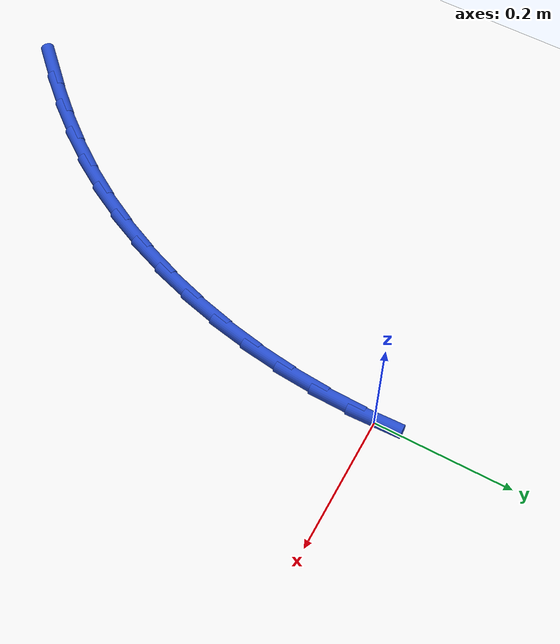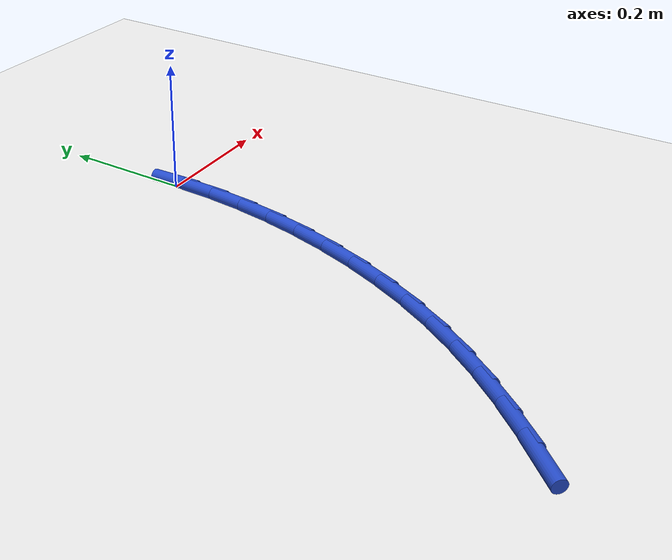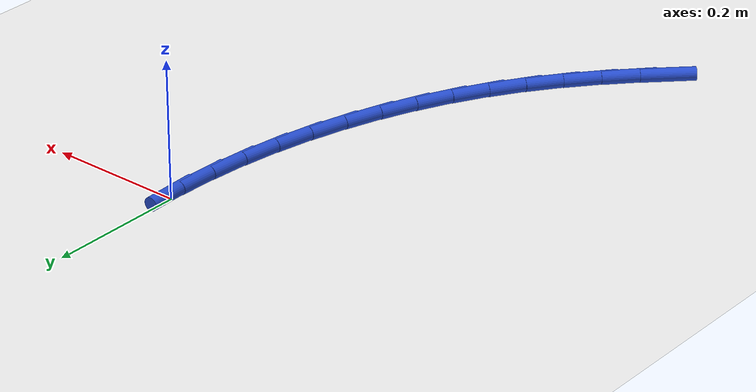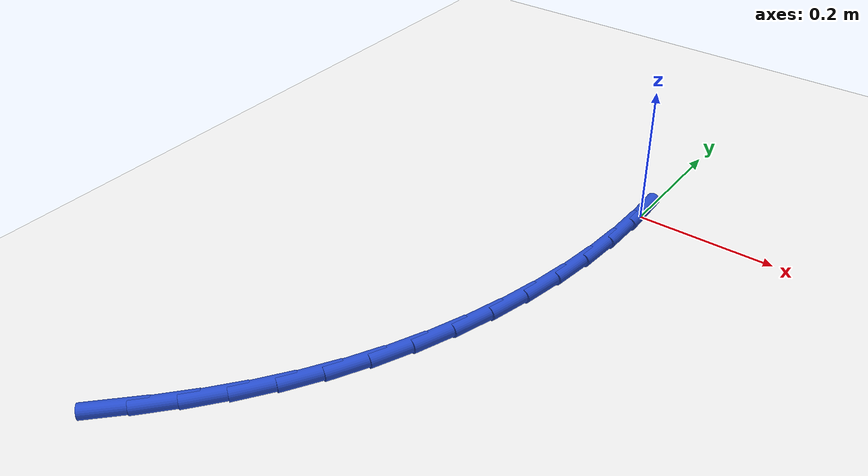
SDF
<sdf version="1.6">
 <world name="default">
  <model name="ground_plane">
   <static>1</static>
   <link name="link">
    <collision name="collision">
     <geometry><plane><normal>0 0 1</normal><size>100 100</size></plane></geometry>
     <surface><friction><ode><mu>100</mu><mu2>50</mu2></ode></friction></surface>
    </collision>
    <visual name="visual">
     <cast_shadows>0</cast_shadows>
     <geometry><plane><normal>0 0 1</normal><size>100 100</size></plane></geometry>
     <material>
      <script><uri>file://media/materials/scripts/gazebo.material</uri><name>Gazebo/WhiteGlow</name></script>
     </material>
    </visual>
   </link>
  </model>
  <model name="line">
   <link name="link_0">
    <pose>3.122502256758253e-17 0.0 0.01 0 1.57 -1.5358867902745093</pose>
    <collision name="collision">
     <geometry><cylinder><radius>0.01</radius><length>0.08</length></cylinder></geometry>
    </collision>
    <visual name="visual">
     <material>
      <script><name>Gazebo/Blue</name><uri>file://media/materials/scripts/gazebo.material</uri></script>
     </material>
     <geometry><cylinder><radius>0.01</radius><length>0.08</length></cylinder></geometry>
    </visual>
   </link>
   <link name="link_106">
    <pose>-0.29446669768822953 -0.6951994799998122 0.01 0 1.57 0.7866260948129299</pose>
    <collision name="collision">
     <geometry><cylinder><radius>0.01</radius><length>0.08</length></cylinder></geometry>
    </collision>
    <visual name="visual">
     <material>
      <script><name>Gazebo/Blue</name><uri>file://media/materials/scripts/gazebo.material</uri></script>
     </material>
     <geometry><cylinder><radius>0.01</radius><length>0.08</length></cylinder></geometry>
    </visual>
   </link>
   <link name="link_107">
    <pose>-0.25564614674681047 -0.656283473849833 0.01 0 1.57 0.8338473973058362</pose>
    <collision name="collision">
     <geometry><cylinder><radius>0.01</radius><length>0.08</length></cylinder></geometry>
    </collision>
    <visual name="visual">
     <material>
      <script><name>Gazebo/Blue</name><uri>file://media/materials/scripts/gazebo.material</uri></script>
     </material>
     <geometry><cylinder><radius>0.01</radius><length>0.08</length></cylinder></geometry>
    </visual>
   </link>
   <link name="link_108">
    <pose>-0.2189912737686156 -0.6158928837679608 0.01 0 1.57 0.8875743778568446</pose>
    <collision name="collision">
     <geometry><cylinder><radius>0.01</radius><length>0.08</length></cylinder></geometry>
    </collision>
    <visual name="visual">
     <material>
      <script><name>Gazebo/Blue</name><uri>file://media/materials/scripts/gazebo.material</uri></script>
     </material>
     <geometry><cylinder><radius>0.01</radius><length>0.08</length></cylinder></geometry>
    </visual>
   </link>
   <link name="link_109">
    <pose>-0.18470992436330155 -0.5737784213397421 0.01 0 1.57 0.9474175337310237</pose>
    <collision name="collision">
     <geometry><cylinder><radius>0.01</radius><length>0.08</length></cylinder></geometry>
    </collision>
    <visual name="visual">
     <material>
      <script><name>Gazebo/Blue</name><uri>file://media/materials/scripts/gazebo.material</uri></script>
     </material>
     <geometry><cylinder><radius>0.01</radius><length>0.08</length></cylinder></geometry>
    </visual>
   </link>
   <link name="link_110">
    <pose>-0.15300994414052335 -0.529690798150721 0.01 0 1.57 1.0126513478692534</pose>
    <collision name="collision">
     <geometry><cylinder><radius>0.01</radius><length>0.08</length></cylinder></geometry>
    </collision>
    <visual name="visual">
     <material>
      <script><name>Gazebo/Blue</name><uri>file://media/materials/scripts/gazebo.material</uri></script>
     </material>
     <geometry><cylinder><radius>0.01</radius><length>0.08</length></cylinder></geometry>
    </visual>
   </link>
   <link name="link_111">
    <pose>-0.12409790340974554 -0.48338473553625017 0.01 0 1.57 1.0794693780646927</pose>
    <collision name="collision">
     <geometry><cylinder><radius>0.01</radius><length>0.08</length></cylinder></geometry>
    </collision>
    <visual name="visual">
     <material>
      <script><name>Gazebo/Blue</name><uri>file://media/materials/scripts/gazebo.material</uri></script>
     </material>
     <geometry><cylinder><radius>0.01</radius><length>0.08</length></cylinder></geometry>
    </visual>
   </link>
   <link name="link_112">
    <pose>-0.09811368737968772 -0.4348246235604712 0.01 0 1.57 1.1434933161870866</pose>
    <collision name="collision">
     <geometry><cylinder><radius>0.01</radius><length>0.08</length></cylinder></geometry>
    </collision>
    <visual name="visual">
     <material>
      <script><name>Gazebo/Blue</name><uri>file://media/materials/scripts/gazebo.material</uri></script>
     </material>
     <geometry><cylinder><radius>0.01</radius><length>0.08</length></cylinder></geometry>
    </visual>
   </link>
   <link name="link_113">
    <pose>-0.07509910860376676 -0.38428320855807396 0.01 0 1.57 1.2048854292577853</pose>
    <collision name="collision">
     <geometry><cylinder><radius>0.01</radius><length>0.08</length></cylinder></geometry>
    </collision>
    <visual name="visual">
     <material>
      <script><name>Gazebo/Blue</name><uri>file://media/materials/scripts/gazebo.material</uri></script>
     </material>
     <geometry><cylinder><radius>0.01</radius><length>0.08</length></cylinder></geometry>
    </visual>
   </link>
   <link name="link_114">
    <pose>-0.05508813255474248 -0.3320579093529155 0.01 0 1.57 1.2641819016337845</pose>
    <collision name="collision">
     <geometry><cylinder><radius>0.01</radius><length>0.08</length></cylinder></geometry>
    </collision>
    <visual name="visual">
     <material>
      <script><name>Gazebo/Blue</name><uri>file://media/materials/scripts/gazebo.material</uri></script>
     </material>
     <geometry><cylinder><radius>0.01</radius><length>0.08</length></cylinder></geometry>
    </visual>
   </link>
   <link name="link_115">
    <pose>-0.03811472470537492 -0.27844614476885265 0.01 0 1.57 1.3219213979325568</pose>
    <collision name="collision">
     <geometry><cylinder><radius>0.01</radius><length>0.08</length></cylinder></geometry>
    </collision>
    <visual name="visual">
     <material>
      <script><name>Gazebo/Blue</name><uri>file://media/materials/scripts/gazebo.material</uri></script>
     </material>
     <geometry><cylinder><radius>0.01</radius><length>0.08</length></cylinder></geometry>
    </visual>
   </link>
   <link name="link_116">
    <pose>-0.02421285052842478 -0.2237453336297444 0.01 0 1.57 1.3786410270621117</pose>
    <collision name="collision">
     <geometry><cylinder><radius>0.01</radius><length>0.08</length></cylinder></geometry>
    </collision>
    <visual name="visual">
     <material>
      <script><name>Gazebo/Blue</name><uri>file://media/materials/scripts/gazebo.material</uri></script>
     </material>
     <geometry><cylinder><radius>0.01</radius><length>0.08</length></cylinder></geometry>
    </visual>
   </link>
   <link name="link_117">
    <pose>-0.013416475496651984 -0.16825289475944755 0.01 0 1.57 1.4348764116666457</pose>
    <collision name="collision">
     <geometry><cylinder><radius>0.01</radius><length>0.08</length></cylinder></geometry>
    </collision>
    <visual name="visual">
     <material>
      <script><name>Gazebo/Blue</name><uri>file://media/materials/scripts/gazebo.material</uri></script>
     </material>
     <geometry><cylinder><radius>0.01</radius><length>0.08</length></cylinder></geometry>
    </visual>
   </link>
   <link name="link_118">
    <pose>-0.005759565082816765 -0.11226624698181954 0.01 0 1.57 1.4911643298800301</pose>
    <collision name="collision">
     <geometry><cylinder><radius>0.01</radius><length>0.08</length></cylinder></geometry>
    </collision>
    <visual name="visual">
     <material>
      <script><name>Gazebo/Blue</name><uri>file://media/materials/scripts/gazebo.material</uri></script>
     </material>
     <geometry><cylinder><radius>0.01</radius><length>0.08</length></cylinder></geometry>
    </visual>
   </link>
   <link name="link_119">
    <pose>-0.0012760847596793128 -0.056082809120717336 0.01 0 1.57 1.5480466709281377</pose>
    <collision name="collision">
     <geometry><cylinder><radius>0.01</radius><length>0.08</length></cylinder></geometry>
    </collision>
    <visual name="visual">
     <material>
      <script><name>Gazebo/Blue</name><uri>file://media/materials/scripts/gazebo.material</uri></script>
     </material>
     <geometry><cylinder><radius>0.01</radius><length>0.08</length></cylinder></geometry>
    </visual>
   </link>
  </model>
 </world>
</sdf>
